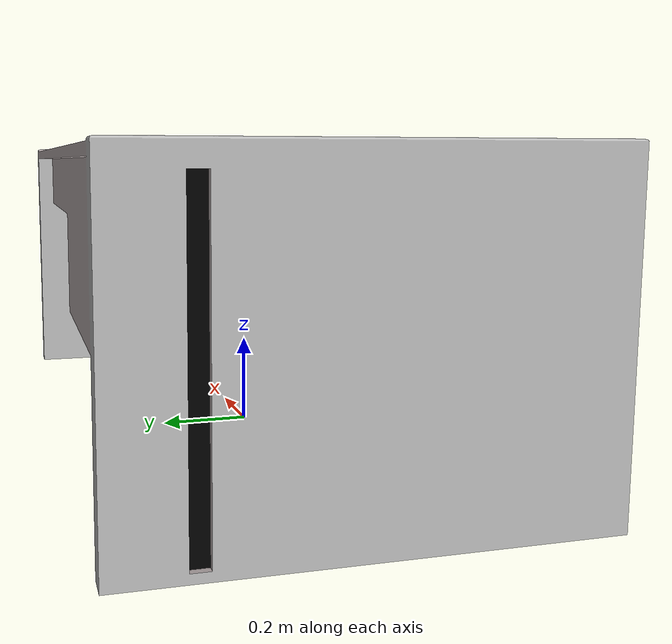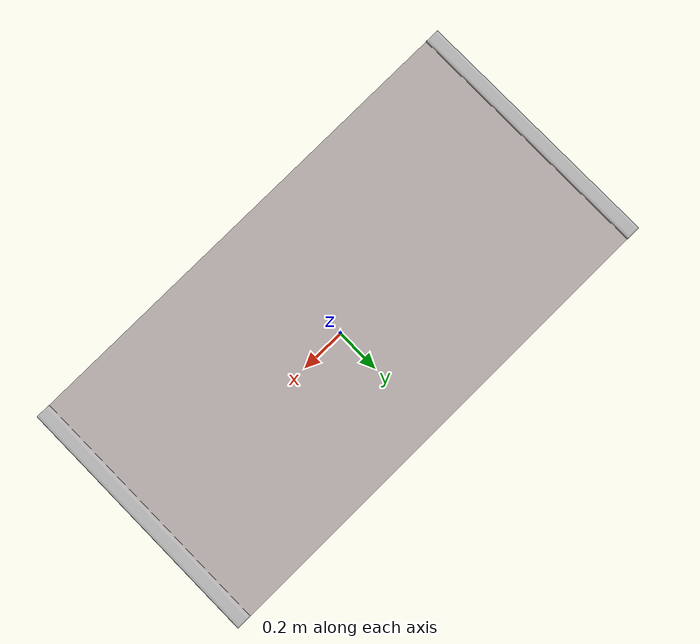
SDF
<?xml version='1.0' ?>
<sdf version='1.6'>
  <model name='Table_small'>
    <static>true</static>
    <link name='link'>
      <collision name='collision'>
        <geometry>
          <mesh>
            <uri>model://table_small/meshes/collision/collision.stl</uri>
          </mesh>
        </geometry>
      </collision>
      <visual name='visual'>
        <geometry>
          <mesh>
            <uri>model://table_small/meshes/visual/visual.dae</uri>
          </mesh>
        </geometry>
      </visual>
    </link>
  </model>
</sdf>
